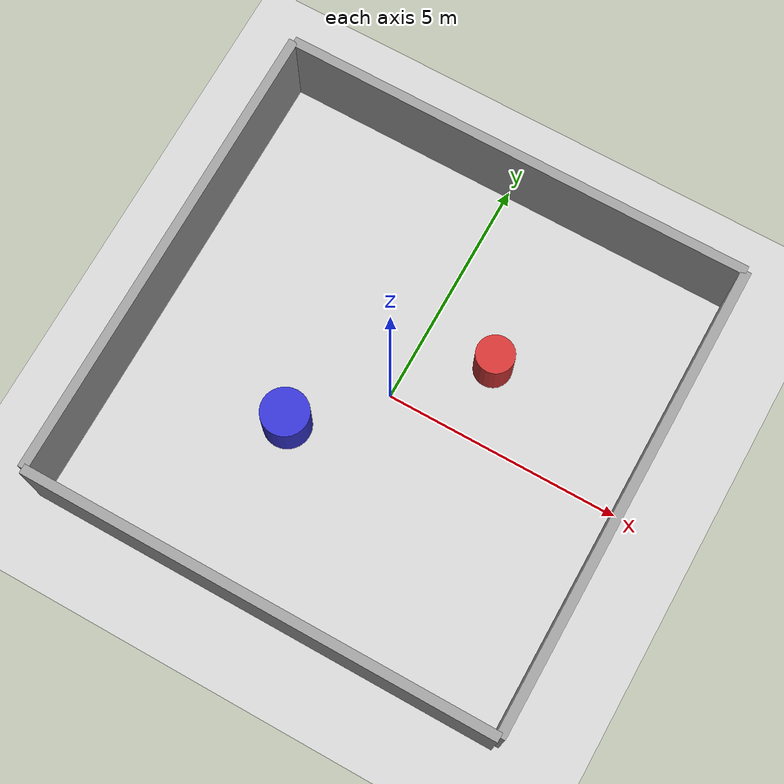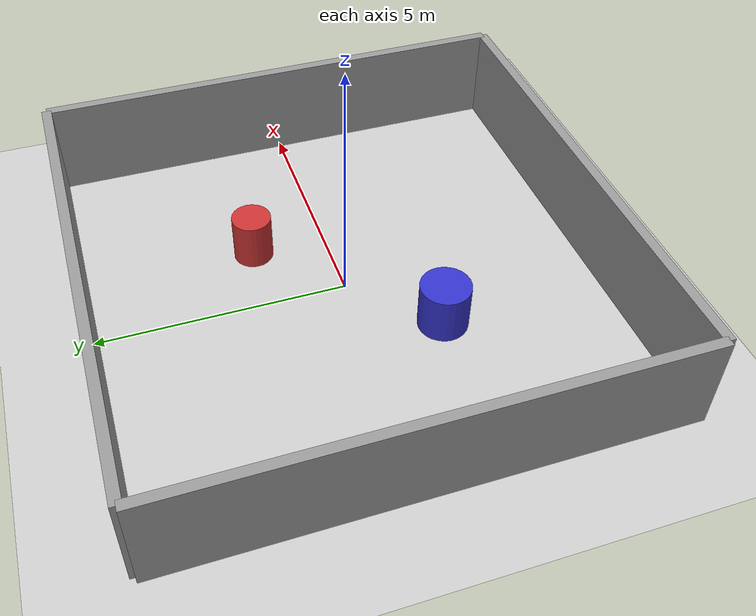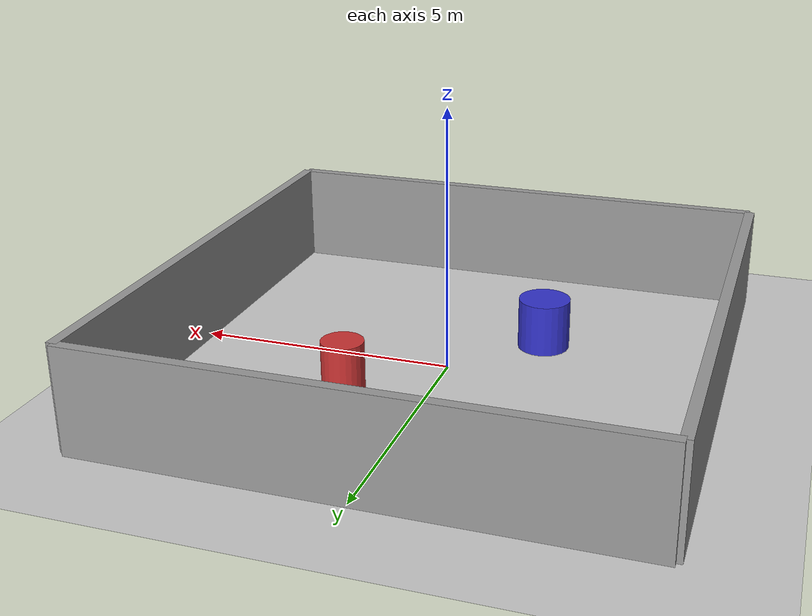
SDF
<?xml version="1.0" ?>
<sdf version="1.6">
  <world name="neuromorphic_arena">
    <!-- Sun -->
    <include>
      <uri>model://sun</uri>
    </include>

    <!-- Ground Plane -->
    <include>
      <uri>model://ground_plane</uri>
    </include>

    <!-- Bounding Wall North -->
    <model name="wall_north">
      <pose>0 5 1.0 0 0 0</pose>
      <static>true</static>
      <link name="link">
        <collision name="collision">
          <geometry><box><size>10 0.2 2.0</size></box></geometry>
        </collision>
        <visual name="visual">
          <geometry><box><size>10 0.2 2.0</size></box></geometry>
          <material><ambient>0.6 0.6 0.6 1</ambient></material>
        </visual>
      </link>
    </model>

    <!-- Bounding Wall South -->
    <model name="wall_south">
      <pose>0 -5 1.0 0 0 0</pose>
      <static>true</static>
      <link name="link">
        <collision name="collision">
          <geometry><box><size>10 0.2 2.0</size></box></geometry>
        </collision>
        <visual name="visual">
          <geometry><box><size>10 0.2 2.0</size></box></geometry>
          <material><ambient>0.6 0.6 0.6 1</ambient></material>
        </visual>
      </link>
    </model>

    <!-- Bounding Wall East -->
    <model name="wall_east">
      <pose>5 0 1.0 0 0 0</pose>
      <static>true</static>
      <link name="link">
        <collision name="collision">
          <geometry><box><size>0.2 10 2.0</size></box></geometry>
        </collision>
        <visual name="visual">
          <geometry><box><size>0.2 10 2.0</size></box></geometry>
          <material><ambient>0.6 0.6 0.6 1</ambient></material>
        </visual>
      </link>
    </model>

    <!-- Bounding Wall West -->
    <model name="wall_west">
      <pose>-5 0 1.0 0 0 0</pose>
      <static>true</static>
      <link name="link">
        <collision name="collision">
          <geometry><box><size>0.2 10 2.0</size></box></geometry>
        </collision>
        <visual name="visual">
          <geometry><box><size>0.2 10 2.0</size></box></geometry>
          <material><ambient>0.6 0.6 0.6 1</ambient></material>
        </visual>
      </link>
    </model>

    <!-- Obstacle Pillar 1 -->
    <model name="obstacle_pillar_1">
      <pose>1.5 1.5 0.5 0 0 0</pose>
      <static>true</static>
      <link name="link">
        <collision name="collision">
          <geometry><cylinder><radius>0.4</radius><length>1.0</length></cylinder></geometry>
        </collision>
        <visual name="visual">
          <geometry><cylinder><radius>0.4</radius><length>1.0</length></cylinder></geometry>
          <material><ambient>0.8 0.2 0.2 1</ambient></material>
        </visual>
      </link>
    </model>

    <!-- Obstacle Pillar 2 -->
    <model name="obstacle_pillar_2">
      <pose>-1.5 -1.5 0.5 0 0 0</pose>
      <static>true</static>
      <link name="link">
        <collision name="collision">
          <geometry><cylinder><radius>0.5</radius><length>1.0</length></cylinder></geometry>
        </collision>
        <visual name="visual">
          <geometry><cylinder><radius>0.5</radius><length>1.0</length></cylinder></geometry>
          <material><ambient>0.2 0.2 0.8 1</ambient></material>
        </visual>
      </link>
    </model>

  </world>
</sdf>
